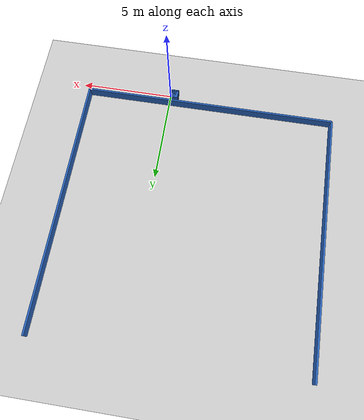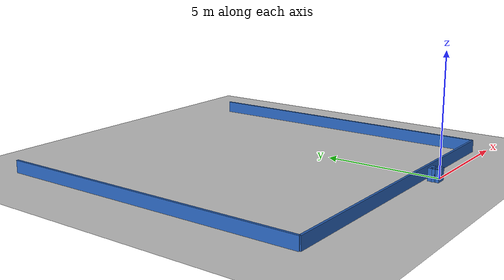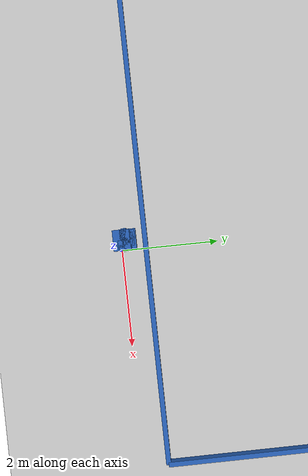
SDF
<?xml version="1.0" ?>
    <sdf version="1.5">
      <world name="default">
        <!-- A global light source -->
        <include>
          <uri>model://sun</uri>
        </include>
        <!-- A ground plane -->
        <include>
          <uri>model://ground_plane</uri>
        </include>

    <model name='libopen_space_final_T2B_55_44'>
      <static>1</static>
      <pose frame=''>-0.225000 0.075000 0.000000 0.000000 0.000000 0.000000</pose>
      <link name='link'>
        <inertial>
          <mass>1</mass>
          <inertia>
            <ixx>0.145833</ixx>
            <ixy>0</ixy>
            <ixz>0</ixz>
            <iyy>0.145833</iyy>
            <iyz>0</iyz>
            <izz>0.125</izz>
          </inertia>
        </inertial>
        <collision name='collision'>
          <geometry>
            <box>
              <size>0.48 0.11 1</size>
            </box>
          </geometry>
          <max_contacts>10</max_contacts>
          <surface>
            <contact>
              <ode/>
            </contact>
            <bounce/>
            <friction>
              <torsional>
                <ode/>
              </torsional>
              <ode/>
            </friction>
          </surface>
        </collision>
        <visual name='visual'>
          <geometry>
            <box>
              <size>0.48 0.11 1</size>
            </box>
          </geometry>
	    <material>
              <ambient>0.152000 0.379000 0.720000 1</ambient>
	      <diffuse>0.152000 0.379000 0.720000 1</diffuse>
          </material>
          <material>
            <script>
              <name>Gazebo/Grey</name>
              <uri>file://media/materials/scripts/gazebo.material</uri>
            </script>
          </material>
        </visual>
        <self_collide>0</self_collide>
        <kinematic>0</kinematic>
        <gravity>1</gravity>
      </link>
      <plugin name='libopen_space_final_T2B_55_44' filename='libopen_space_final_T2B_55_44.so'/>
    </model>

    <model name='libopen_space_final_T2B_105_38'>
      <static>1</static>
      <pose frame=''>-0.225000 0.075000 0.000000 0.000000 0.000000 0.000000</pose>
      <link name='link'>
        <inertial>
          <mass>1</mass>
          <inertia>
            <ixx>0.145833</ixx>
            <ixy>0</ixy>
            <ixz>0</ixz>
            <iyy>0.145833</iyy>
            <iyz>0</iyz>
            <izz>0.125</izz>
          </inertia>
        </inertial>
        <collision name='collision'>
          <geometry>
            <box>
              <size>0.44 0.18 1</size>
            </box>
          </geometry>
          <max_contacts>10</max_contacts>
          <surface>
            <contact>
              <ode/>
            </contact>
            <bounce/>
            <friction>
              <torsional>
                <ode/>
              </torsional>
              <ode/>
            </friction>
          </surface>
        </collision>
        <visual name='visual'>
          <geometry>
            <box>
              <size>0.44 0.18 1</size>
            </box>
          </geometry>
	    <material>
              <ambient>0.152000 0.379000 0.720000 1</ambient>
	      <diffuse>0.152000 0.379000 0.720000 1</diffuse>
          </material>
          <material>
            <script>
              <name>Gazebo/Grey</name>
              <uri>file://media/materials/scripts/gazebo.material</uri>
            </script>
          </material>
        </visual>
        <self_collide>0</self_collide>
        <kinematic>0</kinematic>
        <gravity>1</gravity>
      </link>
      <plugin name='libopen_space_final_T2B_105_38' filename='libopen_space_final_T2B_105_38.so'/>
    </model>

    <model name='libopen_space_final_T2B_91_57'>
      <static>1</static>
      <pose frame=''>-0.225000 0.075000 0.000000 0.000000 0.000000 0.000000</pose>
      <link name='link'>
        <inertial>
          <mass>1</mass>
          <inertia>
            <ixx>0.145833</ixx>
            <ixy>0</ixy>
            <ixz>0</ixz>
            <iyy>0.145833</iyy>
            <iyz>0</iyz>
            <izz>0.125</izz>
          </inertia>
        </inertial>
        <collision name='collision'>
          <geometry>
            <box>
              <size>0.44 0.48 1</size>
            </box>
          </geometry>
          <max_contacts>10</max_contacts>
          <surface>
            <contact>
              <ode/>
            </contact>
            <bounce/>
            <friction>
              <torsional>
                <ode/>
              </torsional>
              <ode/>
            </friction>
          </surface>
        </collision>
        <visual name='visual'>
          <geometry>
            <box>
              <size>0.44 0.48 1</size>
            </box>
          </geometry>
	    <material>
              <ambient>0.152000 0.379000 0.720000 1</ambient>
	      <diffuse>0.152000 0.379000 0.720000 1</diffuse>
          </material>
          <material>
            <script>
              <name>Gazebo/Grey</name>
              <uri>file://media/materials/scripts/gazebo.material</uri>
            </script>
          </material>
        </visual>
        <self_collide>0</self_collide>
        <kinematic>0</kinematic>
        <gravity>1</gravity>
      </link>
      <plugin name='libopen_space_final_T2B_91_57' filename='libopen_space_final_T2B_91_57.so'/>
    </model>

    <model name='libopen_space_final_T2B_115_24'>
      <static>1</static>
      <pose frame=''>-0.225000 0.075000 0.000000 0.000000 0.000000 0.000000</pose>
      <link name='link'>
        <inertial>
          <mass>1</mass>
          <inertia>
            <ixx>0.145833</ixx>
            <ixy>0</ixy>
            <ixz>0</ixz>
            <iyy>0.145833</iyy>
            <iyz>0</iyz>
            <izz>0.125</izz>
          </inertia>
        </inertial>
        <collision name='collision'>
          <geometry>
            <box>
              <size>0.20 0.32 1</size>
            </box>
          </geometry>
          <max_contacts>10</max_contacts>
          <surface>
            <contact>
              <ode/>
            </contact>
            <bounce/>
            <friction>
              <torsional>
                <ode/>
              </torsional>
              <ode/>
            </friction>
          </surface>
        </collision>
        <visual name='visual'>
          <geometry>
            <box>
              <size>0.20 0.32 1</size>
            </box>
          </geometry>
	    <material>
              <ambient>0.152000 0.379000 0.720000 1</ambient>
	      <diffuse>0.152000 0.379000 0.720000 1</diffuse>
          </material>
          <material>
            <script>
              <name>Gazebo/Grey</name>
              <uri>file://media/materials/scripts/gazebo.material</uri>
            </script>
          </material>
        </visual>
        <self_collide>0</self_collide>
        <kinematic>0</kinematic>
        <gravity>1</gravity>
      </link>
      <plugin name='libopen_space_final_T2B_115_24' filename='libopen_space_final_T2B_115_24.so'/>
    </model>

    <model name='libopen_space_final_T2B_129_21'>
      <static>1</static>
      <pose frame=''>-0.225000 0.075000 0.000000 0.000000 0.000000 0.000000</pose>
      <link name='link'>
        <inertial>
          <mass>1</mass>
          <inertia>
            <ixx>0.145833</ixx>
            <ixy>0</ixy>
            <ixz>0</ixz>
            <iyy>0.145833</iyy>
            <iyz>0</iyz>
            <izz>0.125</izz>
          </inertia>
        </inertial>
        <collision name='collision'>
          <geometry>
            <box>
              <size>0.25 0.40 1</size>
            </box>
          </geometry>
          <max_contacts>10</max_contacts>
          <surface>
            <contact>
              <ode/>
            </contact>
            <bounce/>
            <friction>
              <torsional>
                <ode/>
              </torsional>
              <ode/>
            </friction>
          </surface>
        </collision>
        <visual name='visual'>
          <geometry>
            <box>
              <size>0.25 0.40 1</size>
            </box>
          </geometry>
	    <material>
              <ambient>0.152000 0.379000 0.720000 1</ambient>
	      <diffuse>0.152000 0.379000 0.720000 1</diffuse>
          </material>
          <material>
            <script>
              <name>Gazebo/Grey</name>
              <uri>file://media/materials/scripts/gazebo.material</uri>
            </script>
          </material>
        </visual>
        <self_collide>0</self_collide>
        <kinematic>0</kinematic>
        <gravity>1</gravity>
      </link>
      <plugin name='libopen_space_final_T2B_129_21' filename='libopen_space_final_T2B_129_21.so'/>
    </model>

    <model name='libopen_space_final_T2B_112_81'>
      <static>1</static>
      <pose frame=''>-0.225000 0.075000 0.000000 0.000000 0.000000 0.000000</pose>
      <link name='link'>
        <inertial>
          <mass>1</mass>
          <inertia>
            <ixx>0.145833</ixx>
            <ixy>0</ixy>
            <ixz>0</ixz>
            <iyy>0.145833</iyy>
            <iyz>0</iyz>
            <izz>0.125</izz>
          </inertia>
        </inertial>
        <collision name='collision'>
          <geometry>
            <box>
              <size>0.40 0.24 1</size>
            </box>
          </geometry>
          <max_contacts>10</max_contacts>
          <surface>
            <contact>
              <ode/>
            </contact>
            <bounce/>
            <friction>
              <torsional>
                <ode/>
              </torsional>
              <ode/>
            </friction>
          </surface>
        </collision>
        <visual name='visual'>
          <geometry>
            <box>
              <size>0.40 0.24 1</size>
            </box>
          </geometry>
	    <material>
              <ambient>0.152000 0.379000 0.720000 1</ambient>
	      <diffuse>0.152000 0.379000 0.720000 1</diffuse>
          </material>
          <material>
            <script>
              <name>Gazebo/Grey</name>
              <uri>file://media/materials/scripts/gazebo.material</uri>
            </script>
          </material>
        </visual>
        <self_collide>0</self_collide>
        <kinematic>0</kinematic>
        <gravity>1</gravity>
      </link>
      <plugin name='libopen_space_final_T2B_112_81' filename='libopen_space_final_T2B_112_81.so'/>
    </model>

    <model name='libopen_space_final_T2B_125_67'>
      <static>1</static>
      <pose frame=''>-0.225000 0.075000 0.000000 0.000000 0.000000 0.000000</pose>
      <link name='link'>
        <inertial>
          <mass>1</mass>
          <inertia>
            <ixx>0.145833</ixx>
            <ixy>0</ixy>
            <ixz>0</ixz>
            <iyy>0.145833</iyy>
            <iyz>0</iyz>
            <izz>0.125</izz>
          </inertia>
        </inertial>
        <collision name='collision'>
          <geometry>
            <box>
              <size>0.27 0.29 1</size>
            </box>
          </geometry>
          <max_contacts>10</max_contacts>
          <surface>
            <contact>
              <ode/>
            </contact>
            <bounce/>
            <friction>
              <torsional>
                <ode/>
              </torsional>
              <ode/>
            </friction>
          </surface>
        </collision>
        <visual name='visual'>
          <geometry>
            <box>
              <size>0.27 0.29 1</size>
            </box>
          </geometry>
	    <material>
              <ambient>0.152000 0.379000 0.720000 1</ambient>
	      <diffuse>0.152000 0.379000 0.720000 1</diffuse>
          </material>
          <material>
            <script>
              <name>Gazebo/Grey</name>
              <uri>file://media/materials/scripts/gazebo.material</uri>
            </script>
          </material>
        </visual>
        <self_collide>0</self_collide>
        <kinematic>0</kinematic>
        <gravity>1</gravity>
      </link>
      <plugin name='libopen_space_final_T2B_125_67' filename='libopen_space_final_T2B_125_67.so'/>
    </model>

    <model name='libopen_space_final_T2B_84_5'>
      <static>1</static>
      <pose frame=''>-0.225000 0.075000 0.000000 0.000000 0.000000 0.000000</pose>
      <link name='link'>
        <inertial>
          <mass>1</mass>
          <inertia>
            <ixx>0.145833</ixx>
            <ixy>0</ixy>
            <ixz>0</ixz>
            <iyy>0.145833</iyy>
            <iyz>0</iyz>
            <izz>0.125</izz>
          </inertia>
        </inertial>
        <collision name='collision'>
          <geometry>
            <box>
              <size>0.18 0.21 1</size>
            </box>
          </geometry>
          <max_contacts>10</max_contacts>
          <surface>
            <contact>
              <ode/>
            </contact>
            <bounce/>
            <friction>
              <torsional>
                <ode/>
              </torsional>
              <ode/>
            </friction>
          </surface>
        </collision>
        <visual name='visual'>
          <geometry>
            <box>
              <size>0.18 0.21 1</size>
            </box>
          </geometry>
	    <material>
              <ambient>0.152000 0.379000 0.720000 1</ambient>
	      <diffuse>0.152000 0.379000 0.720000 1</diffuse>
          </material>
          <material>
            <script>
              <name>Gazebo/Grey</name>
              <uri>file://media/materials/scripts/gazebo.material</uri>
            </script>
          </material>
        </visual>
        <self_collide>0</self_collide>
        <kinematic>0</kinematic>
        <gravity>1</gravity>
      </link>
      <plugin name='libopen_space_final_T2B_84_5' filename='libopen_space_final_T2B_84_5.so'/>
    </model>

    <model name='libopen_space_final_T2B_125_59'>
      <static>1</static>
      <pose frame=''>-0.225000 0.075000 0.000000 0.000000 0.000000 0.000000</pose>
      <link name='link'>
        <inertial>
          <mass>1</mass>
          <inertia>
            <ixx>0.145833</ixx>
            <ixy>0</ixy>
            <ixz>0</ixz>
            <iyy>0.145833</iyy>
            <iyz>0</iyz>
            <izz>0.125</izz>
          </inertia>
        </inertial>
        <collision name='collision'>
          <geometry>
            <box>
              <size>0.42 0.26 1</size>
            </box>
          </geometry>
          <max_contacts>10</max_contacts>
          <surface>
            <contact>
              <ode/>
            </contact>
            <bounce/>
            <friction>
              <torsional>
                <ode/>
              </torsional>
              <ode/>
            </friction>
          </surface>
        </collision>
        <visual name='visual'>
          <geometry>
            <box>
              <size>0.42 0.26 1</size>
            </box>
          </geometry>
	    <material>
              <ambient>0.152000 0.379000 0.720000 1</ambient>
	      <diffuse>0.152000 0.379000 0.720000 1</diffuse>
          </material>
          <material>
            <script>
              <name>Gazebo/Grey</name>
              <uri>file://media/materials/scripts/gazebo.material</uri>
            </script>
          </material>
        </visual>
        <self_collide>0</self_collide>
        <kinematic>0</kinematic>
        <gravity>1</gravity>
      </link>
      <plugin name='libopen_space_final_T2B_125_59' filename='libopen_space_final_T2B_125_59.so'/>
    </model>

    <model name='libopen_space_final_T2B_90_95'>
      <static>1</static>
      <pose frame=''>-0.225000 0.075000 0.000000 0.000000 0.000000 0.000000</pose>
      <link name='link'>
        <inertial>
          <mass>1</mass>
          <inertia>
            <ixx>0.145833</ixx>
            <ixy>0</ixy>
            <ixz>0</ixz>
            <iyy>0.145833</iyy>
            <iyz>0</iyz>
            <izz>0.125</izz>
          </inertia>
        </inertial>
        <collision name='collision'>
          <geometry>
            <box>
              <size>0.30 0.35 1</size>
            </box>
          </geometry>
          <max_contacts>10</max_contacts>
          <surface>
            <contact>
              <ode/>
            </contact>
            <bounce/>
            <friction>
              <torsional>
                <ode/>
              </torsional>
              <ode/>
            </friction>
          </surface>
        </collision>
        <visual name='visual'>
          <geometry>
            <box>
              <size>0.30 0.35 1</size>
            </box>
          </geometry>
	    <material>
              <ambient>0.152000 0.379000 0.720000 1</ambient>
	      <diffuse>0.152000 0.379000 0.720000 1</diffuse>
          </material>
          <material>
            <script>
              <name>Gazebo/Grey</name>
              <uri>file://media/materials/scripts/gazebo.material</uri>
            </script>
          </material>
        </visual>
        <self_collide>0</self_collide>
        <kinematic>0</kinematic>
        <gravity>1</gravity>
      </link>
      <plugin name='libopen_space_final_T2B_90_95' filename='libopen_space_final_T2B_90_95.so'/>
    </model>

    <model name='libopen_space_final_T2B_112_98'>
      <static>1</static>
      <pose frame=''>-0.225000 0.075000 0.000000 0.000000 0.000000 0.000000</pose>
      <link name='link'>
        <inertial>
          <mass>1</mass>
          <inertia>
            <ixx>0.145833</ixx>
            <ixy>0</ixy>
            <ixz>0</ixz>
            <iyy>0.145833</iyy>
            <iyz>0</iyz>
            <izz>0.125</izz>
          </inertia>
        </inertial>
        <collision name='collision'>
          <geometry>
            <box>
              <size>0.15 0.31 1</size>
            </box>
          </geometry>
          <max_contacts>10</max_contacts>
          <surface>
            <contact>
              <ode/>
            </contact>
            <bounce/>
            <friction>
              <torsional>
                <ode/>
              </torsional>
              <ode/>
            </friction>
          </surface>
        </collision>
        <visual name='visual'>
          <geometry>
            <box>
              <size>0.15 0.31 1</size>
            </box>
          </geometry>
	    <material>
              <ambient>0.152000 0.379000 0.720000 1</ambient>
	      <diffuse>0.152000 0.379000 0.720000 1</diffuse>
          </material>
          <material>
            <script>
              <name>Gazebo/Grey</name>
              <uri>file://media/materials/scripts/gazebo.material</uri>
            </script>
          </material>
        </visual>
        <self_collide>0</self_collide>
        <kinematic>0</kinematic>
        <gravity>1</gravity>
      </link>
      <plugin name='libopen_space_final_T2B_112_98' filename='libopen_space_final_T2B_112_98.so'/>
    </model>

    <model name='libopen_space_final_T2B_71_69'>
      <static>1</static>
      <pose frame=''>-0.225000 0.075000 0.000000 0.000000 0.000000 0.000000</pose>
      <link name='link'>
        <inertial>
          <mass>1</mass>
          <inertia>
            <ixx>0.145833</ixx>
            <ixy>0</ixy>
            <ixz>0</ixz>
            <iyy>0.145833</iyy>
            <iyz>0</iyz>
            <izz>0.125</izz>
          </inertia>
        </inertial>
        <collision name='collision'>
          <geometry>
            <box>
              <size>0.40 0.43 1</size>
            </box>
          </geometry>
          <max_contacts>10</max_contacts>
          <surface>
            <contact>
              <ode/>
            </contact>
            <bounce/>
            <friction>
              <torsional>
                <ode/>
              </torsional>
              <ode/>
            </friction>
          </surface>
        </collision>
        <visual name='visual'>
          <geometry>
            <box>
              <size>0.40 0.43 1</size>
            </box>
          </geometry>
	    <material>
              <ambient>0.152000 0.379000 0.720000 1</ambient>
	      <diffuse>0.152000 0.379000 0.720000 1</diffuse>
          </material>
          <material>
            <script>
              <name>Gazebo/Grey</name>
              <uri>file://media/materials/scripts/gazebo.material</uri>
            </script>
          </material>
        </visual>
        <self_collide>0</self_collide>
        <kinematic>0</kinematic>
        <gravity>1</gravity>
      </link>
      <plugin name='libopen_space_final_T2B_71_69' filename='libopen_space_final_T2B_71_69.so'/>
    </model>

    <model name='libopen_space_final_T2B_73_39'>
      <static>1</static>
      <pose frame=''>-0.225000 0.075000 0.000000 0.000000 0.000000 0.000000</pose>
      <link name='link'>
        <inertial>
          <mass>1</mass>
          <inertia>
            <ixx>0.145833</ixx>
            <ixy>0</ixy>
            <ixz>0</ixz>
            <iyy>0.145833</iyy>
            <iyz>0</iyz>
            <izz>0.125</izz>
          </inertia>
        </inertial>
        <collision name='collision'>
          <geometry>
            <box>
              <size>0.43 0.22 1</size>
            </box>
          </geometry>
          <max_contacts>10</max_contacts>
          <surface>
            <contact>
              <ode/>
            </contact>
            <bounce/>
            <friction>
              <torsional>
                <ode/>
              </torsional>
              <ode/>
            </friction>
          </surface>
        </collision>
        <visual name='visual'>
          <geometry>
            <box>
              <size>0.43 0.22 1</size>
            </box>
          </geometry>
	    <material>
              <ambient>0.152000 0.379000 0.720000 1</ambient>
	      <diffuse>0.152000 0.379000 0.720000 1</diffuse>
          </material>
          <material>
            <script>
              <name>Gazebo/Grey</name>
              <uri>file://media/materials/scripts/gazebo.material</uri>
            </script>
          </material>
        </visual>
        <self_collide>0</self_collide>
        <kinematic>0</kinematic>
        <gravity>1</gravity>
      </link>
      <plugin name='libopen_space_final_T2B_73_39' filename='libopen_space_final_T2B_73_39.so'/>
    </model>

    <model name='libopen_space_final_T2B_111_18'>
      <static>1</static>
      <pose frame=''>-0.225000 0.075000 0.000000 0.000000 0.000000 0.000000</pose>
      <link name='link'>
        <inertial>
          <mass>1</mass>
          <inertia>
            <ixx>0.145833</ixx>
            <ixy>0</ixy>
            <ixz>0</ixz>
            <iyy>0.145833</iyy>
            <iyz>0</iyz>
            <izz>0.125</izz>
          </inertia>
        </inertial>
        <collision name='collision'>
          <geometry>
            <box>
              <size>0.38 0.28 1</size>
            </box>
          </geometry>
          <max_contacts>10</max_contacts>
          <surface>
            <contact>
              <ode/>
            </contact>
            <bounce/>
            <friction>
              <torsional>
                <ode/>
              </torsional>
              <ode/>
            </friction>
          </surface>
        </collision>
        <visual name='visual'>
          <geometry>
            <box>
              <size>0.38 0.28 1</size>
            </box>
          </geometry>
	    <material>
              <ambient>0.152000 0.379000 0.720000 1</ambient>
	      <diffuse>0.152000 0.379000 0.720000 1</diffuse>
          </material>
          <material>
            <script>
              <name>Gazebo/Grey</name>
              <uri>file://media/materials/scripts/gazebo.material</uri>
            </script>
          </material>
        </visual>
        <self_collide>0</self_collide>
        <kinematic>0</kinematic>
        <gravity>1</gravity>
      </link>
      <plugin name='libopen_space_final_T2B_111_18' filename='libopen_space_final_T2B_111_18.so'/>
    </model>

        <model name='bottom_wall'>
          <static>1</static>
          <pose frame=''>-2.25 0.5 0.000000 0.000000 0.000000 1.57079632</pose>
          <link name='link'>
            <inertial>
            <mass>1</mass>
            <inertia>
              <ixx>0.145833</ixx>
              <ixy>0</ixy>
              <ixz>0</ixz>
              <iyy>0.145833</iyy>
              <iyz>0</iyz>
              <izz>0.125</izz>
            </inertia>
            </inertial>
            <collision name='collision'>
            <geometry>
              <box>
              <size>0.1 13.5 1</size>
              </box>
            </geometry>
            <max_contacts>10</max_contacts>
            <surface>
              <contact>
              <ode/>
              </contact>
              <bounce/>
              <friction>
              <torsional>
                <ode/>
              </torsional>
              <ode/>
              </friction>
            </surface>
            </collision>
            <visual name='visual'>
            <geometry>
              <box>
              <size>0.1 13.5 1</size>
              </box>
            </geometry>
            <material>
              <ambient>0.152000 0.379000 0.720000 1</ambient>
            <diffuse>0.152000 0.379000 0.720000 1</diffuse>
            </material>
            <material>
              <script>
              <name>Gazebo/Grey</name>
              <uri>file://media/materials/scripts/gazebo.material</uri>
              </script>
            </material>
            </visual>
            <self_collide>0</self_collide>
            <kinematic>0</kinematic>
            <gravity>1</gravity>
          </link>
        </model>

        <model name='left_wall'>
          <static>1</static>
          <pose frame=''>-9 7.25 0.000000 0.000000 0.000000 0.000000</pose>
          <link name='link'>
            <inertial>
            <mass>1</mass>
            <inertia>
              <ixx>0.145833</ixx>
              <ixy>0</ixy>
              <ixz>0</ixz>
              <iyy>0.145833</iyy>
              <iyz>0</iyz>
              <izz>0.125</izz>
            </inertia>
            </inertial>
            <collision name='collision'>
            <geometry>
              <box>
              <size>0.1 13.5 1</size>
              </box>
            </geometry>
            <max_contacts>10</max_contacts>
            <surface>
              <contact>
              <ode/>
              </contact>
              <bounce/>
              <friction>
              <torsional>
                <ode/>
              </torsional>
              <ode/>
              </friction>
            </surface>
            </collision>
            <visual name='visual'>
            <geometry>
              <box>
              <size>0.1 13.5 1</size>
              </box>
            </geometry>
            <material>
              <ambient>0.152000 0.379000 0.720000 1</ambient>
            <diffuse>0.152000 0.379000 0.720000 1</diffuse>
            </material>
            <material>
              <script>
              <name>Gazebo/Grey</name>
              <uri>file://media/materials/scripts/gazebo.material</uri>
              </script>
            </material>
            </visual>
            <self_collide>0</self_collide>
            <kinematic>0</kinematic>
            <gravity>1</gravity>
          </link>
        </model>

        <model name='right_wall'>
          <static>1</static>
          <pose frame=''>4.5 7.25 0.000000 0.000000 0.000000 0.000000</pose>
          <link name='link'>
            <inertial>
            <mass>1</mass>
            <inertia>
              <ixx>0.145833</ixx>
              <ixy>0</ixy>
              <ixz>0</ixz>
              <iyy>0.145833</iyy>
              <iyz>0</iyz>
              <izz>0.125</izz>
            </inertia>
            </inertial>
            <collision name='collision'>
            <geometry>
              <box>
              <size>0.1 13.5 1</size>
              </box>
            </geometry>
            <max_contacts>10</max_contacts>
            <surface>
              <contact>
              <ode/>
              </contact>
              <bounce/>
              <friction>
              <torsional>
                <ode/>
              </torsional>
              <ode/>
              </friction>
            </surface>
            </collision>
            <visual name='visual'>
            <geometry>
              <box>
              <size>0.1 13.5 1</size>
              </box>
            </geometry>
            <material>
              <ambient>0.152000 0.379000 0.720000 1</ambient>
            <diffuse>0.152000 0.379000 0.720000 1</diffuse>
            </material>
            <material>
              <script>
              <name>Gazebo/Grey</name>
              <uri>file://media/materials/scripts/gazebo.material</uri>
              </script>
            </material>
            </visual>
            <self_collide>0</self_collide>
            <kinematic>0</kinematic>
            <gravity>1</gravity>
          </link>
        </model>

      </world>
    </sdf>"
